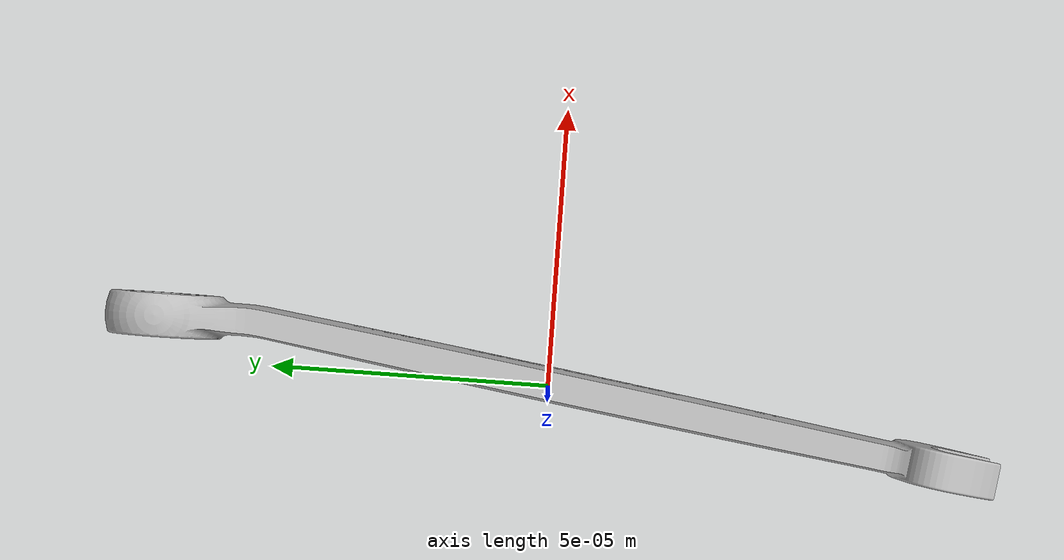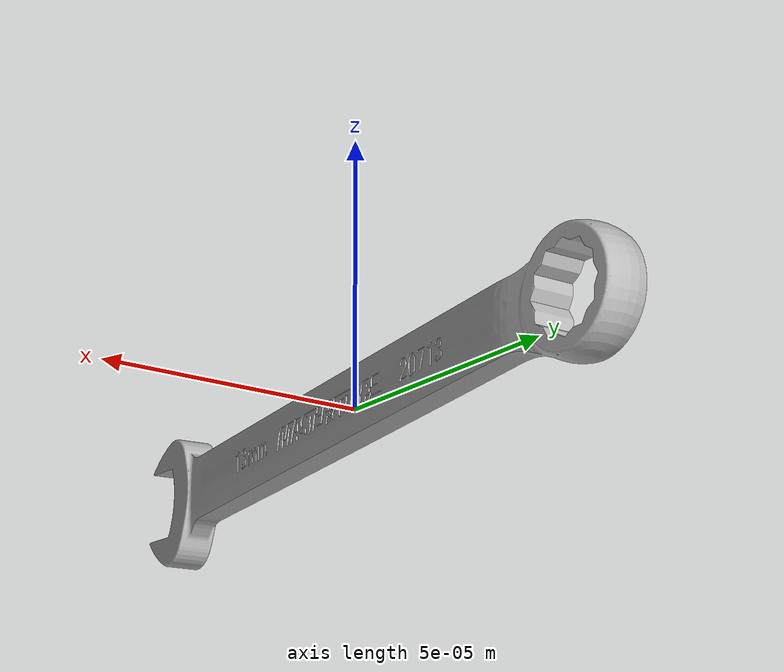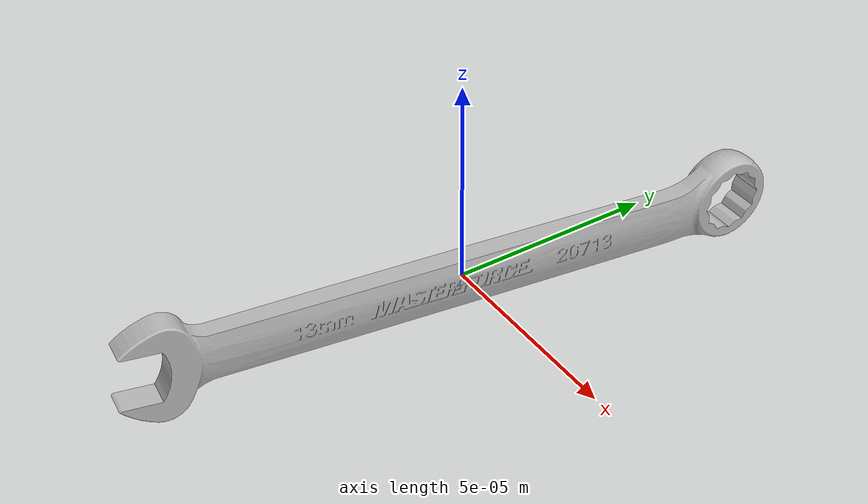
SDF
<?xml version='1.0'?>
<sdf version='1.4'>
  <model name='wrench12'>
    <link name='link_wrench12'>
      <pose>0 0 0 0 -1.57079 0</pose>
      <gravity>1</gravity>
      <kinematic>0</kinematic>
      <inertial>
        <mass>0.0847</mass>
        <pose>0 0 0 -0.122173 0 0</pose>
        <inertia>
          <ixx>0.000185</ixx>
          <ixy>0.0000000</ixy>
          <ixz>-0.000000</ixz>
          <iyy>0.00000522</iyy>
          <iyz>-0.00000</iyz>
          <izz>0.000184</izz>
        </inertia>
      </inertial>
      <visual name='visual'>
        <pose>0 0 0 0 -0 0</pose>
        <geometry>
          <mesh>
            <uri>file://wrench.DAE</uri>
            <scale>0.001 0.001 0.001</scale>
          </mesh>
        </geometry>
        <cast_shadows>1</cast_shadows>
        <transparency>0</transparency>
      </visual>
      <collision name='collision'>
        <max_contacts>10</max_contacts>
        <pose>0 0 0 0 -0 0</pose>
        <geometry>
          <mesh>
            <uri>file://wrench.DAE</uri>
            <scale>0.001 0.001 0.001</scale>
          </mesh>
        </geometry>
        <surface>
          <friction>
            <ode>
              <mu>0.3</mu>
              <mu2>0.3</mu2>
            </ode>
          </friction>
        </surface>
      </collision>
    </link>
    <static>0</static>
    <allow_auto_disable>1</allow_auto_disable>
  </model>
</sdf>
